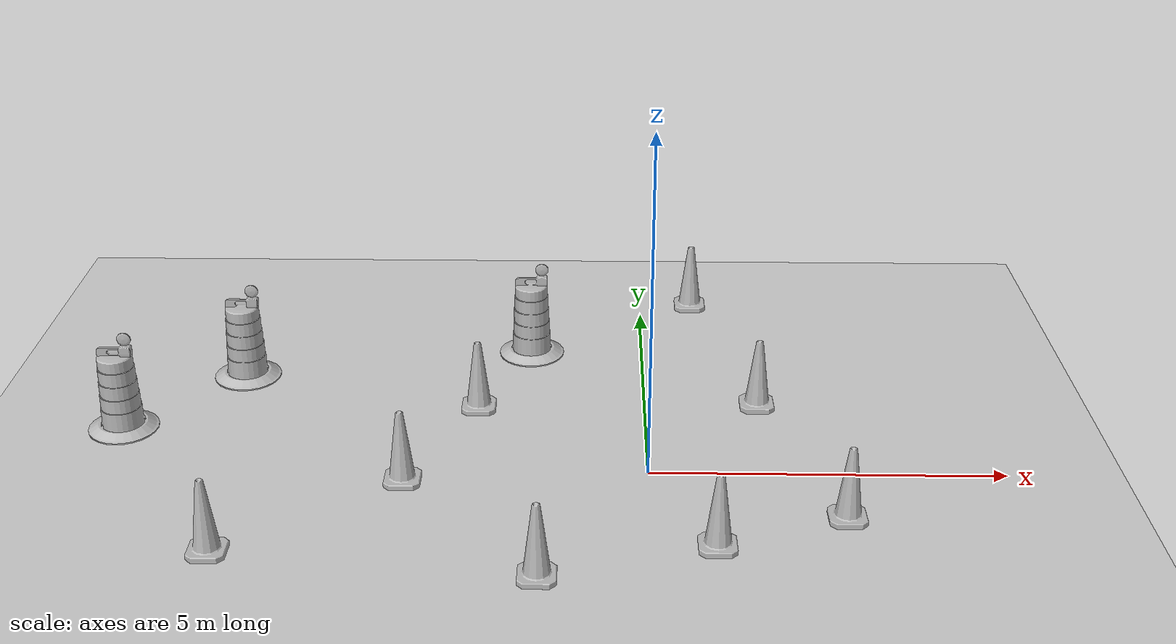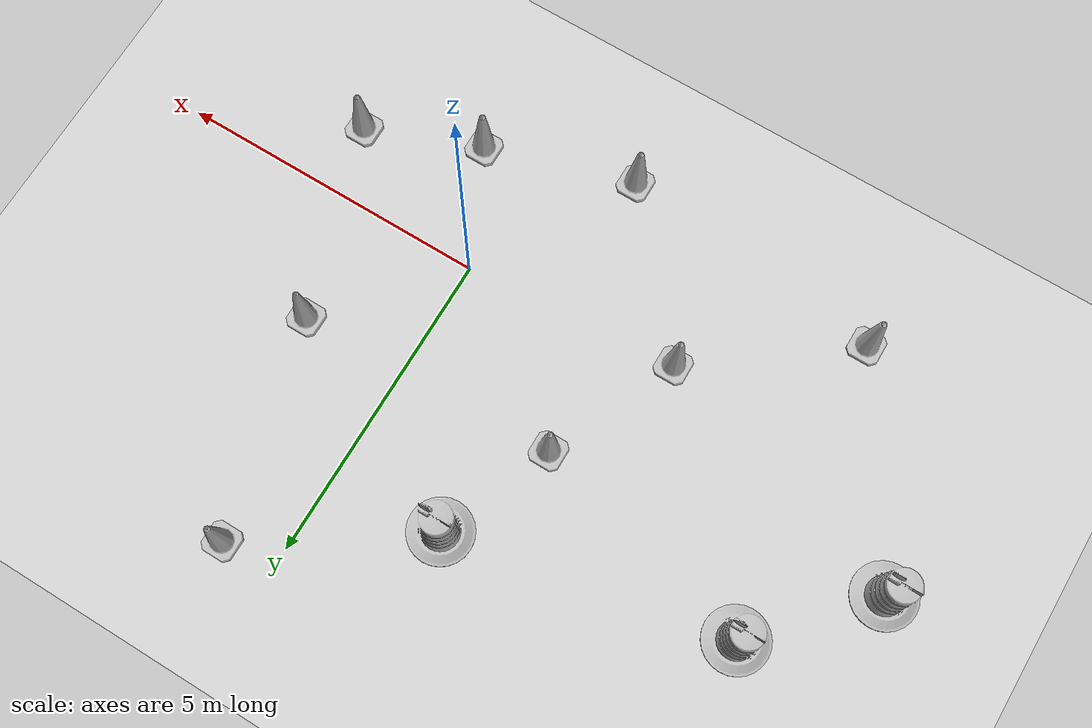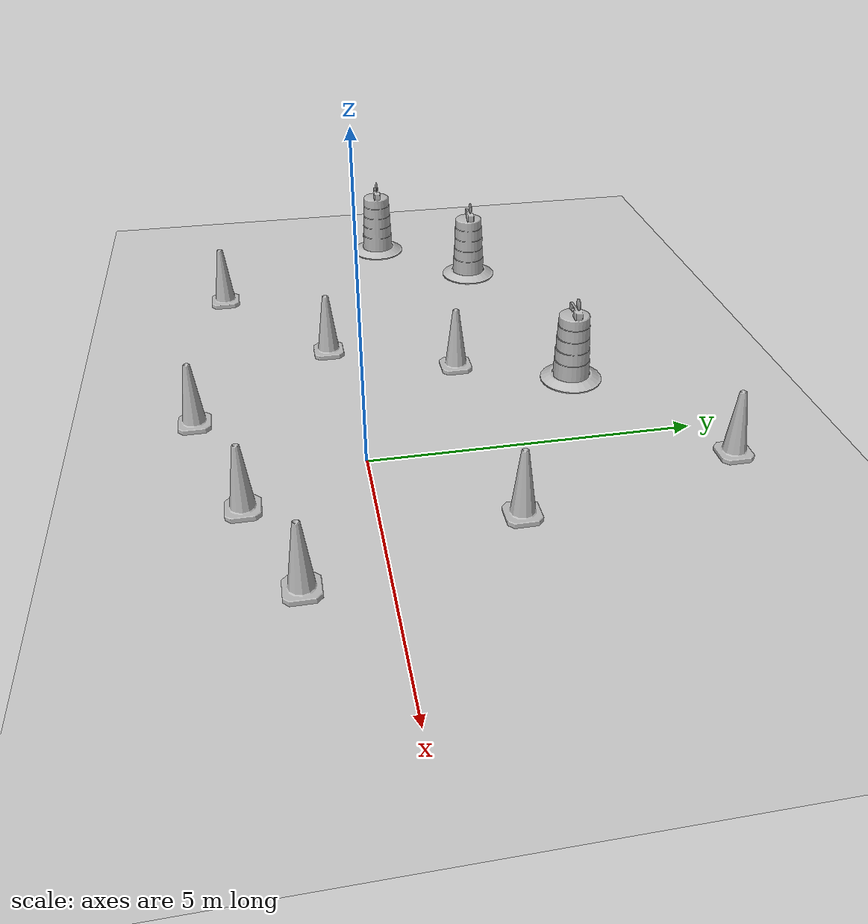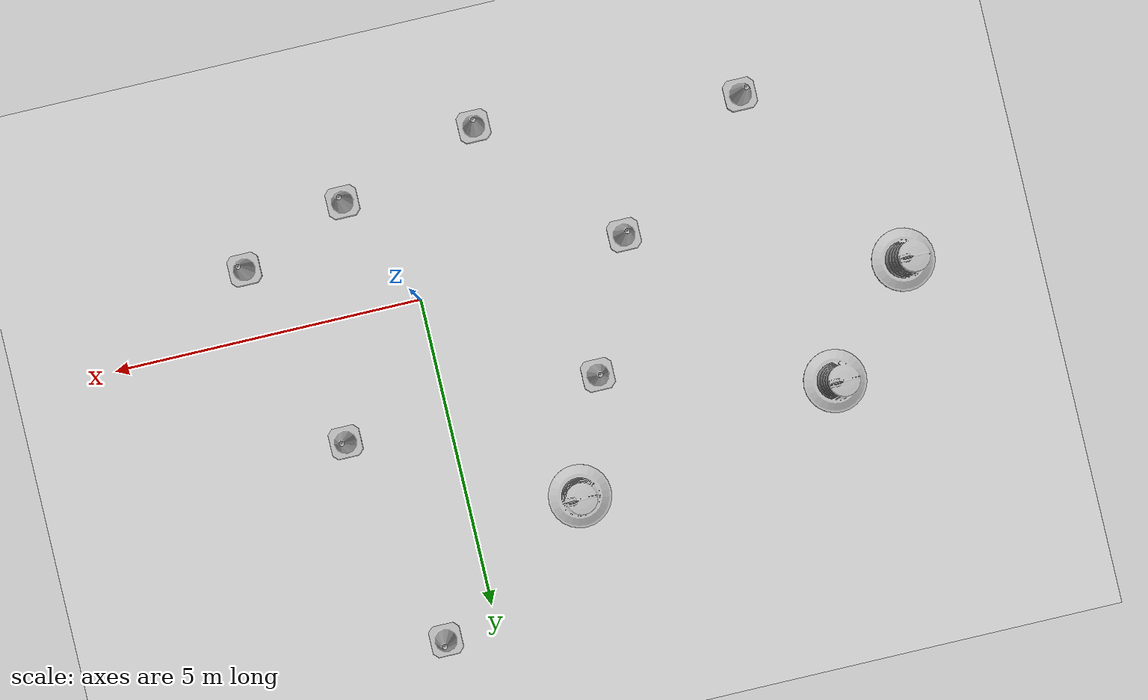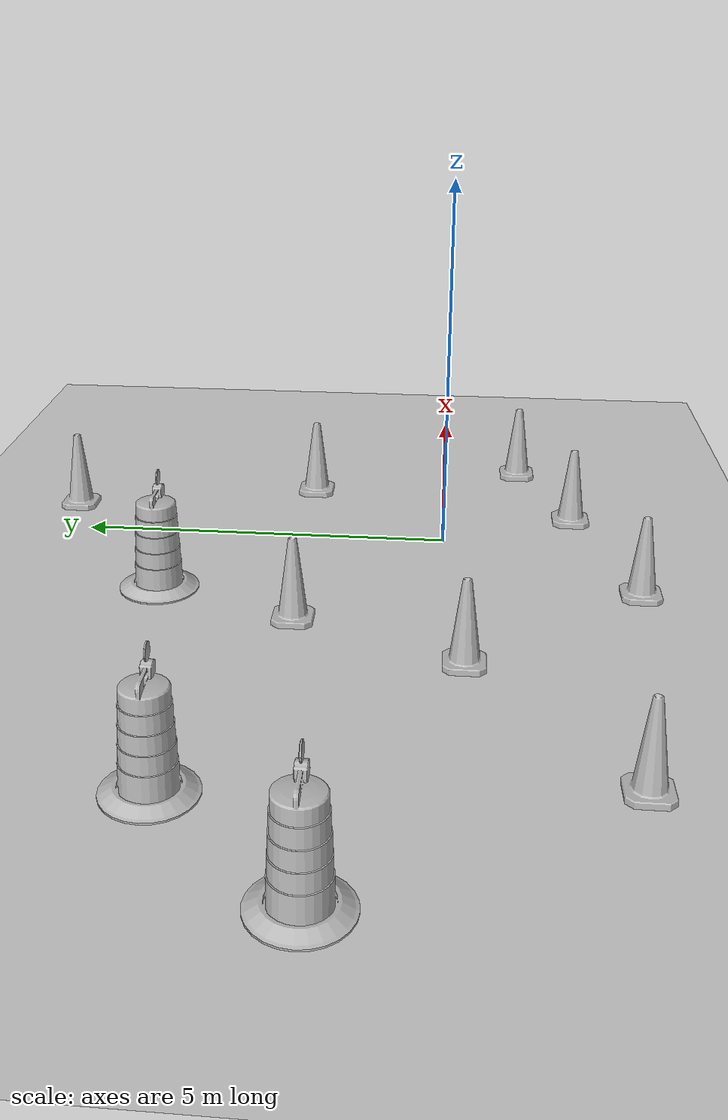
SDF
<sdf version="1.7">
 <world name="default">
  <light name="sun" type="directional">
   <pose>0 0 10 0 -0 0</pose>
   <diffuse>0.8 0.8 0.8 1</diffuse>
   <specular>0.2 0.2 0.2 1</specular>
   <attenuation>
    <range>1000</range>
    <constant>0.9</constant>
    <linear>0.01</linear>
    <quadratic>0.001</quadratic>
   </attenuation>
   <direction>-0.5 0.1 -0.9</direction>
   <spot><inner_angle>0</inner_angle><outer_angle>0</outer_angle><falloff>0</falloff></spot>
  </light>
  <model name="ground_plane">
   <static>1</static>
   <link name="link">
    <collision name="collision">
     <geometry><plane><normal>0 0 1</normal><size>100 100</size></plane></geometry>
     <surface>
      <contact><collide_bitmask>65535</collide_bitmask></contact>
      <friction><ode><mu>100</mu><mu2>50</mu2></ode></friction>
     </surface>
    </collision>
    <visual name="visual">
     <cast_shadows>0</cast_shadows>
     <geometry><plane><normal>0 0 1</normal><size>100 100</size></plane></geometry>
     <material>
      <script><uri>file://media/materials/scripts/gazebo.material</uri><name>Gazebo/Grey</name></script>
     </material>
    </visual>
   </link>
  </model>
  <gravity>0 0 -9.8</gravity>
  <magnetic_field>6e-06 2.3e-05 -4.2e-05</magnetic_field>
  <atmosphere type="adiabatic"/>
  <physics type="ode">
   <max_step_size>0.001</max_step_size>
   <real_time_factor>1</real_time_factor>
   <real_time_update_rate>1000</real_time_update_rate>
  </physics>
  <scene><ambient>0.4 0.4 0.4 1</ambient><background>0.7 0.7 0.7 1</background><shadows>1</shadows></scene>
  <spherical_coordinates>
   <surface_model>EARTH_WGS84</surface_model>
   <latitude_deg>0</latitude_deg>
   <longitude_deg>0</longitude_deg>
   <elevation>0</elevation>
   <heading_deg>0</heading_deg>
  </spherical_coordinates>
  <model name="Construction Cone">
   <link name="link">
    <collision name="collision">
     <geometry>
      <mesh><scale>10 10 10</scale><uri>model://construction_cone/meshes/construction_cone.dae</uri></mesh>
     </geometry>
    </collision>
    <visual name="visual">
     <geometry>
      <mesh><scale>10 10 10</scale><uri>model://construction_cone/meshes/construction_cone.dae</uri></mesh>
     </geometry>
    </visual>
    <inertial>
     <inertia><ixx>1</ixx><ixy>0</ixy><ixz>0</ixz><iyy>1</iyy><iyz>0</iyz><izz>1</izz></inertia>
     <mass>1</mass>
    </inertial>
   </link>
   <pose>-1.46342 -2.50666 -0 0 -1e-06 0</pose>
  </model>
  <model name="Construction Barrel">
   <link name="link">
    <inertial>
     <pose>0 0 0.4 0 -0 0</pose>
     <mass>500</mass>
     <inertia><ixx>51.2096</ixx><iyy>51.2096</iyy><izz>25</izz><ixy>0</ixy><ixz>0</ixz><iyz>0</iyz></inertia>
    </inertial>
    <collision name="collision">
     <geometry><mesh><uri>model://construction_barrel/meshes/construction_barrel.dae</uri></mesh></geometry>
    </collision>
    <visual name="visual">
     <geometry><mesh><uri>model://construction_barrel/meshes/construction_barrel.dae</uri></mesh></geometry>
    </visual>
   </link>
   <pose>-6.15093 2.77345 -2e-06 -8e-06 -4e-06 -1.9e-05</pose>
  </model>
  <model name="Construction Cone_0">
   <link name="link">
    <collision name="collision">
     <geometry>
      <mesh><scale>10 10 10</scale><uri>model://construction_cone/meshes/construction_cone.dae</uri></mesh>
     </geometry>
    </collision>
    <visual name="visual">
     <geometry>
      <mesh><scale>10 10 10</scale><uri>model://construction_cone/meshes/construction_cone.dae</uri></mesh>
     </geometry>
    </visual>
    <inertial>
     <inertia><ixx>1</ixx><ixy>0</ixy><ixz>0</ixz><iyy>1</iyy><iyz>0</iyz><izz>1</izz></inertia>
     <mass>1</mass>
    </inertial>
   </link>
   <pose>-5.71952 -2.02677 -0 0 -0 0</pose>
  </model>
  <model name="Construction Cone_1">
   <link name="link">
    <collision name="collision">
     <geometry>
      <mesh><scale>10 10 10</scale><uri>model://construction_cone/meshes/construction_cone.dae</uri></mesh>
     </geometry>
    </collision>
    <visual name="visual">
     <geometry>
      <mesh><scale>10 10 10</scale><uri>model://construction_cone/meshes/construction_cone.dae</uri></mesh>
     </geometry>
    </visual>
    <inertial>
     <inertia><ixx>1</ixx><ixy>0</ixy><ixz>0</ixz><iyy>1</iyy><iyz>0</iyz><izz>1</izz></inertia>
     <mass>1</mass>
    </inertial>
   </link>
   <pose>0.839302 5.37637 -0 0 -1e-06 0</pose>
  </model>
  <model name="Construction Cone_2">
   <link name="link">
    <collision name="collision">
     <geometry>
      <mesh><scale>10 10 10</scale><uri>model://construction_cone/meshes/construction_cone.dae</uri></mesh>
     </geometry>
    </collision>
    <visual name="visual">
     <geometry>
      <mesh><scale>10 10 10</scale><uri>model://construction_cone/meshes/construction_cone.dae</uri></mesh>
     </geometry>
    </visual>
    <inertial>
     <inertia><ixx>1</ixx><ixy>0</ixy><ixz>0</ixz><iyy>1</iyy><iyz>0</iyz><izz>1</izz></inertia>
     <mass>1</mass>
    </inertial>
   </link>
   <pose>2.61946 -1.11407 -0 0 -1e-06 0</pose>
  </model>
  <model name="Construction Barrel_0">
   <link name="link">
    <inertial>
     <pose>0 0 0.4 0 -0 0</pose>
     <mass>500</mass>
     <inertia><ixx>51.2096</ixx><iyy>51.2096</iyy><izz>25</izz><ixy>0</ixy><ixz>0</ixz><iyz>0</iyz></inertia>
    </inertial>
    <collision name="collision">
     <geometry><mesh><uri>model://construction_barrel/meshes/construction_barrel.dae</uri></mesh></geometry>
    </collision>
    <visual name="visual">
     <geometry><mesh><uri>model://construction_barrel/meshes/construction_barrel.dae</uri></mesh></geometry>
    </visual>
   </link>
   <pose>-1.76488 3.62994 -1e-06 5e-06 -2e-06 -1.3e-05</pose>
  </model>
  <model name="Construction Cone_3">
   <link name="link">
    <collision name="collision">
     <geometry>
      <mesh><scale>10 10 10</scale><uri>model://construction_cone/meshes/construction_cone.dae</uri></mesh>
     </geometry>
    </collision>
    <visual name="visual">
     <geometry>
      <mesh><scale>10 10 10</scale><uri>model://construction_cone/meshes/construction_cone.dae</uri></mesh>
     </geometry>
    </visual>
    <inertial>
     <inertia><ixx>1</ixx><ixy>0</ixy><ixz>0</ixz><iyy>1</iyy><iyz>0</iyz><izz>1</izz></inertia>
     <mass>1</mass>
    </inertial>
   </link>
   <pose>-2.48538 1.8118 -0 0 -1e-06 0</pose>
  </model>
  <model name="Construction Barrel_1">
   <link name="link">
    <inertial>
     <pose>0 0 0.4 0 -0 0</pose>
     <mass>500</mass>
     <inertia><ixx>51.2096</ixx><iyy>51.2096</iyy><izz>25</izz><ixy>0</ixy><ixz>0</ixz><iyz>0</iyz></inertia>
    </inertial>
    <collision name="collision">
     <geometry><mesh><uri>model://construction_barrel/meshes/construction_barrel.dae</uri></mesh></geometry>
    </collision>
    <visual name="visual">
     <geometry><mesh><uri>model://construction_barrel/meshes/construction_barrel.dae</uri></mesh></geometry>
    </visual>
   </link>
   <pose>-7.65456 1.13643 0 0 0 -9e-06</pose>
  </model>
  <model name="Construction Cone_4">
   <link name="link">
    <collision name="collision">
     <geometry>
      <mesh><scale>10 10 10</scale><uri>model://construction_cone/meshes/construction_cone.dae</uri></mesh>
     </geometry>
    </collision>
    <visual name="visual">
     <geometry>
      <mesh><scale>10 10 10</scale><uri>model://construction_cone/meshes/construction_cone.dae</uri></mesh>
     </geometry>
    </visual>
    <inertial>
     <inertia><ixx>1</ixx><ixy>0</ixy><ixz>0</ixz><iyy>1</iyy><iyz>0</iyz><izz>1</izz></inertia>
     <mass>1</mass>
    </inertial>
   </link>
   <pose>-3.40214 -0.267111 -0 0 -0 0</pose>
  </model>
  <model name="Construction Cone_5">
   <link name="link">
    <collision name="collision">
     <geometry>
      <mesh><scale>10 10 10</scale><uri>model://construction_cone/meshes/construction_cone.dae</uri></mesh>
     </geometry>
    </collision>
    <visual name="visual">
     <geometry>
      <mesh><scale>10 10 10</scale><uri>model://construction_cone/meshes/construction_cone.dae</uri></mesh>
     </geometry>
    </visual>
    <inertial>
     <inertia><ixx>1</ixx><ixy>0</ixy><ixz>0</ixz><iyy>1</iyy><iyz>0</iyz><izz>1</izz></inertia>
     <mass>1</mass>
    </inertial>
   </link>
   <pose>1.67693 1.93732 0 -0 -0 -0</pose>
  </model>
  <model name="Construction Cone_6">
   <link name="link">
    <collision name="collision">
     <geometry>
      <mesh><scale>10 10 10</scale><uri>model://construction_cone/meshes/construction_cone.dae</uri></mesh>
     </geometry>
    </collision>
    <visual name="visual">
     <geometry>
      <mesh><scale>10 10 10</scale><uri>model://construction_cone/meshes/construction_cone.dae</uri></mesh>
     </geometry>
    </visual>
    <inertial>
     <inertia><ixx>1</ixx><ixy>0</ixy><ixz>0</ixz><iyy>1</iyy><iyz>0</iyz><izz>1</izz></inertia>
     <mass>1</mass>
    </inertial>
   </link>
   <pose>0.850614 -1.80539 -0 0 -0 0</pose>
  </model>
 </world>
</sdf>
